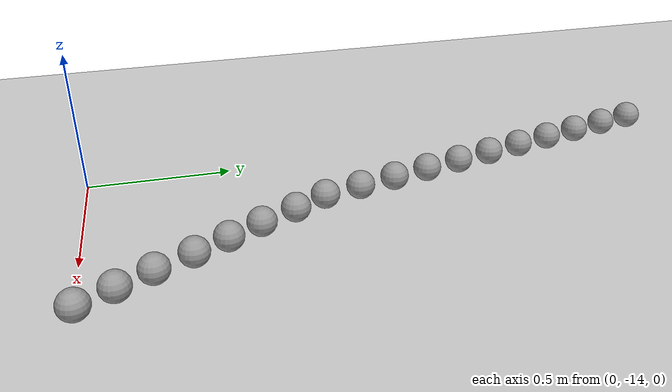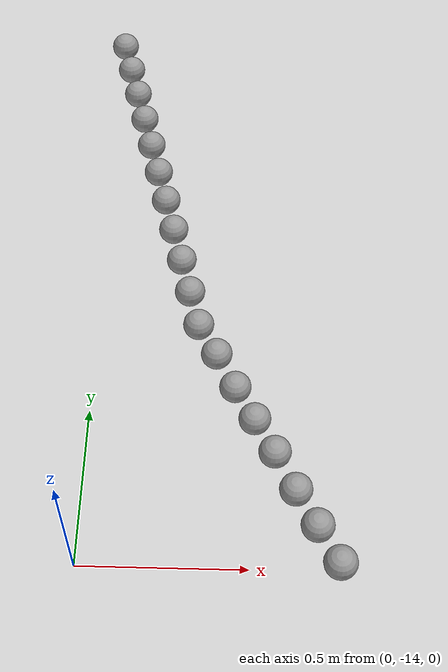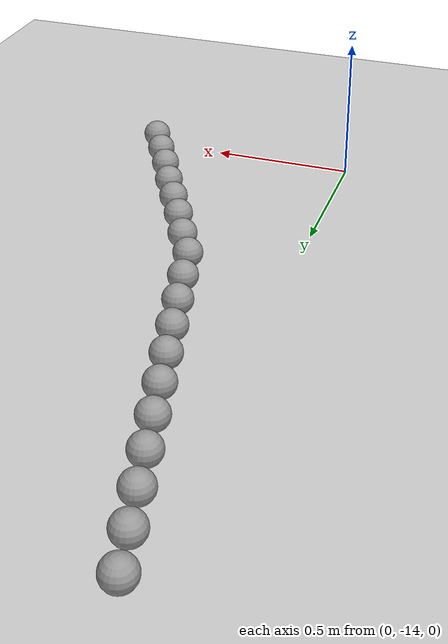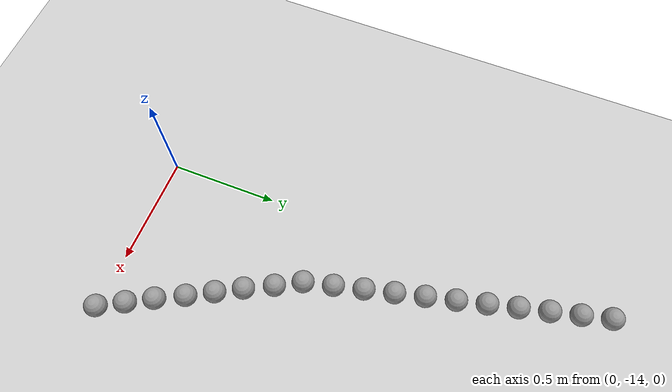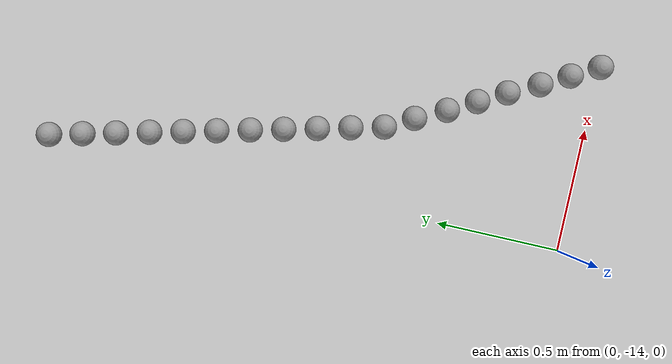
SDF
<sdf version="1.6">
 <world name="default">
  <model name="ground_plane">
   <static>1</static>
   <link name="link">
    <collision name="collision">
     <geometry><plane><normal>0 0 1</normal><size>100 100</size></plane></geometry>
     <surface><friction><ode><mu>100</mu><mu2>50</mu2></ode></friction></surface>
    </collision>
    <visual name="visual">
     <cast_shadows>0</cast_shadows>
     <geometry><plane><normal>0 0 1</normal><size>100 100</size></plane></geometry>
     <material>
      <script><uri>file://media/materials/scripts/gazebo.material</uri><name>Gazebo/Grey</name></script>
     </material>
    </visual>
   </link>
  </model>
  <model name="unit_sphere_0_593">
   <pose>0.757000 -13.990000 0.050000 0 -0 0</pose>
   <link name="link">
    <inertial>
     <mass>1</mass>
     <inertia><ixx>0.1</ixx><ixy>0</ixy><ixz>0</ixz><iyy>0.1</iyy><iyz>0</iyz><izz>0.1</izz></inertia>
    </inertial>
    <collision name="collision"><geometry><sphere><radius>0.050000</radius></sphere></geometry></collision>
    <visual name="visual">
     <geometry><sphere><radius>0.050000</radius></sphere></geometry>
     <material>
      <script><name>Gazebo/Grey</name><uri>file://media/materials/scripts/gazebo.material</uri></script>
     </material>
    </visual>
   </link>
  </model>
  <model name="unit_sphere_0_594">
   <pose>0.696000 -13.880000 0.050000 0 -0 0</pose>
   <link name="link">
    <inertial>
     <mass>1</mass>
     <inertia><ixx>0.1</ixx><ixy>0</ixy><ixz>0</ixz><iyy>0.1</iyy><iyz>0</iyz><izz>0.1</izz></inertia>
    </inertial>
    <collision name="collision"><geometry><sphere><radius>0.050000</radius></sphere></geometry></collision>
    <visual name="visual">
     <geometry><sphere><radius>0.050000</radius></sphere></geometry>
     <material>
      <script><name>Gazebo/Grey</name><uri>file://media/materials/scripts/gazebo.material</uri></script>
     </material>
    </visual>
   </link>
  </model>
  <model name="unit_sphere_0_595">
   <pose>0.635000 -13.770000 0.050000 0 -0 0</pose>
   <link name="link">
    <inertial>
     <mass>1</mass>
     <inertia><ixx>0.1</ixx><ixy>0</ixy><ixz>0</ixz><iyy>0.1</iyy><iyz>0</iyz><izz>0.1</izz></inertia>
    </inertial>
    <collision name="collision"><geometry><sphere><radius>0.050000</radius></sphere></geometry></collision>
    <visual name="visual">
     <geometry><sphere><radius>0.050000</radius></sphere></geometry>
     <material>
      <script><name>Gazebo/Grey</name><uri>file://media/materials/scripts/gazebo.material</uri></script>
     </material>
    </visual>
   </link>
  </model>
  <model name="unit_sphere_0_596">
   <pose>0.574000 -13.650000 0.050000 0 -0 0</pose>
   <link name="link">
    <inertial>
     <mass>1</mass>
     <inertia><ixx>0.1</ixx><ixy>0</ixy><ixz>0</ixz><iyy>0.1</iyy><iyz>0</iyz><izz>0.1</izz></inertia>
    </inertial>
    <collision name="collision"><geometry><sphere><radius>0.050000</radius></sphere></geometry></collision>
    <visual name="visual">
     <geometry><sphere><radius>0.050000</radius></sphere></geometry>
     <material>
      <script><name>Gazebo/Grey</name><uri>file://media/materials/scripts/gazebo.material</uri></script>
     </material>
    </visual>
   </link>
  </model>
  <model name="unit_sphere_0_597">
   <pose>0.513000 -13.540000 0.050000 0 -0 0</pose>
   <link name="link">
    <inertial>
     <mass>1</mass>
     <inertia><ixx>0.1</ixx><ixy>0</ixy><ixz>0</ixz><iyy>0.1</iyy><iyz>0</iyz><izz>0.1</izz></inertia>
    </inertial>
    <collision name="collision"><geometry><sphere><radius>0.050000</radius></sphere></geometry></collision>
    <visual name="visual">
     <geometry><sphere><radius>0.050000</radius></sphere></geometry>
     <material>
      <script><name>Gazebo/Grey</name><uri>file://media/materials/scripts/gazebo.material</uri></script>
     </material>
    </visual>
   </link>
  </model>
  <model name="unit_sphere_0_598">
   <pose>0.452000 -13.430000 0.050000 0 -0 0</pose>
   <link name="link">
    <inertial>
     <mass>1</mass>
     <inertia><ixx>0.1</ixx><ixy>0</ixy><ixz>0</ixz><iyy>0.1</iyy><iyz>0</iyz><izz>0.1</izz></inertia>
    </inertial>
    <collision name="collision"><geometry><sphere><radius>0.050000</radius></sphere></geometry></collision>
    <visual name="visual">
     <geometry><sphere><radius>0.050000</radius></sphere></geometry>
     <material>
      <script><name>Gazebo/Grey</name><uri>file://media/materials/scripts/gazebo.material</uri></script>
     </material>
    </visual>
   </link>
  </model>
  <model name="unit_sphere_0_599">
   <pose>0.391000 -13.310000 0.050000 0 -0 0</pose>
   <link name="link">
    <inertial>
     <mass>1</mass>
     <inertia><ixx>0.1</ixx><ixy>0</ixy><ixz>0</ixz><iyy>0.1</iyy><iyz>0</iyz><izz>0.1</izz></inertia>
    </inertial>
    <collision name="collision"><geometry><sphere><radius>0.050000</radius></sphere></geometry></collision>
    <visual name="visual">
     <geometry><sphere><radius>0.050000</radius></sphere></geometry>
     <material>
      <script><name>Gazebo/Grey</name><uri>file://media/materials/scripts/gazebo.material</uri></script>
     </material>
    </visual>
   </link>
  </model>
  <model name="unit_sphere_0_600">
   <pose>0.330000 -13.200000 0.050000 0 -0 0</pose>
   <link name="link">
    <inertial>
     <mass>1</mass>
     <inertia><ixx>0.1</ixx><ixy>0</ixy><ixz>0</ixz><iyy>0.1</iyy><iyz>0</iyz><izz>0.1</izz></inertia>
    </inertial>
    <collision name="collision"><geometry><sphere><radius>0.050000</radius></sphere></geometry></collision>
    <visual name="visual">
     <geometry><sphere><radius>0.050000</radius></sphere></geometry>
     <material>
      <script><name>Gazebo/Grey</name><uri>file://media/materials/scripts/gazebo.material</uri></script>
     </material>
    </visual>
   </link>
  </model>
  <model name="unit_sphere_0_601">
   <pose>0.297000 -13.070000 0.050000 0 -0 0</pose>
   <link name="link">
    <inertial>
     <mass>1</mass>
     <inertia><ixx>0.1</ixx><ixy>0</ixy><ixz>0</ixz><iyy>0.1</iyy><iyz>0</iyz><izz>0.1</izz></inertia>
    </inertial>
    <collision name="collision"><geometry><sphere><radius>0.050000</radius></sphere></geometry></collision>
    <visual name="visual">
     <geometry><sphere><radius>0.050000</radius></sphere></geometry>
     <material>
      <script><name>Gazebo/Grey</name><uri>file://media/materials/scripts/gazebo.material</uri></script>
     </material>
    </visual>
   </link>
  </model>
  <model name="unit_sphere_0_602">
   <pose>0.264000 -12.940000 0.050000 0 -0 0</pose>
   <link name="link">
    <inertial>
     <mass>1</mass>
     <inertia><ixx>0.1</ixx><ixy>0</ixy><ixz>0</ixz><iyy>0.1</iyy><iyz>0</iyz><izz>0.1</izz></inertia>
    </inertial>
    <collision name="collision"><geometry><sphere><radius>0.050000</radius></sphere></geometry></collision>
    <visual name="visual">
     <geometry><sphere><radius>0.050000</radius></sphere></geometry>
     <material>
      <script><name>Gazebo/Grey</name><uri>file://media/materials/scripts/gazebo.material</uri></script>
     </material>
    </visual>
   </link>
  </model>
  <model name="unit_sphere_0_603">
   <pose>0.231000 -12.810000 0.050000 0 -0 0</pose>
   <link name="link">
    <inertial>
     <mass>1</mass>
     <inertia><ixx>0.1</ixx><ixy>0</ixy><ixz>0</ixz><iyy>0.1</iyy><iyz>0</iyz><izz>0.1</izz></inertia>
    </inertial>
    <collision name="collision"><geometry><sphere><radius>0.050000</radius></sphere></geometry></collision>
    <visual name="visual">
     <geometry><sphere><radius>0.050000</radius></sphere></geometry>
     <material>
      <script><name>Gazebo/Grey</name><uri>file://media/materials/scripts/gazebo.material</uri></script>
     </material>
    </visual>
   </link>
  </model>
  <model name="unit_sphere_0_604">
   <pose>0.198000 -12.680000 0.050000 0 -0 0</pose>
   <link name="link">
    <inertial>
     <mass>1</mass>
     <inertia><ixx>0.1</ixx><ixy>0</ixy><ixz>0</ixz><iyy>0.1</iyy><iyz>0</iyz><izz>0.1</izz></inertia>
    </inertial>
    <collision name="collision"><geometry><sphere><radius>0.050000</radius></sphere></geometry></collision>
    <visual name="visual">
     <geometry><sphere><radius>0.050000</radius></sphere></geometry>
     <material>
      <script><name>Gazebo/Grey</name><uri>file://media/materials/scripts/gazebo.material</uri></script>
     </material>
    </visual>
   </link>
  </model>
  <model name="unit_sphere_0_605">
   <pose>0.165000 -12.550000 0.050000 0 -0 0</pose>
   <link name="link">
    <inertial>
     <mass>1</mass>
     <inertia><ixx>0.1</ixx><ixy>0</ixy><ixz>0</ixz><iyy>0.1</iyy><iyz>0</iyz><izz>0.1</izz></inertia>
    </inertial>
    <collision name="collision"><geometry><sphere><radius>0.050000</radius></sphere></geometry></collision>
    <visual name="visual">
     <geometry><sphere><radius>0.050000</radius></sphere></geometry>
     <material>
      <script><name>Gazebo/Grey</name><uri>file://media/materials/scripts/gazebo.material</uri></script>
     </material>
    </visual>
   </link>
  </model>
  <model name="unit_sphere_0_606">
   <pose>0.132000 -12.420000 0.050000 0 -0 0</pose>
   <link name="link">
    <inertial>
     <mass>1</mass>
     <inertia><ixx>0.1</ixx><ixy>0</ixy><ixz>0</ixz><iyy>0.1</iyy><iyz>0</iyz><izz>0.1</izz></inertia>
    </inertial>
    <collision name="collision"><geometry><sphere><radius>0.050000</radius></sphere></geometry></collision>
    <visual name="visual">
     <geometry><sphere><radius>0.050000</radius></sphere></geometry>
     <material>
      <script><name>Gazebo/Grey</name><uri>file://media/materials/scripts/gazebo.material</uri></script>
     </material>
    </visual>
   </link>
  </model>
  <model name="unit_sphere_0_607">
   <pose>0.099000 -12.290000 0.050000 0 -0 0</pose>
   <link name="link">
    <inertial>
     <mass>1</mass>
     <inertia><ixx>0.1</ixx><ixy>0</ixy><ixz>0</ixz><iyy>0.1</iyy><iyz>0</iyz><izz>0.1</izz></inertia>
    </inertial>
    <collision name="collision"><geometry><sphere><radius>0.050000</radius></sphere></geometry></collision>
    <visual name="visual">
     <geometry><sphere><radius>0.050000</radius></sphere></geometry>
     <material>
      <script><name>Gazebo/Grey</name><uri>file://media/materials/scripts/gazebo.material</uri></script>
     </material>
    </visual>
   </link>
  </model>
  <model name="unit_sphere_0_608">
   <pose>0.066000 -12.160000 0.050000 0 -0 0</pose>
   <link name="link">
    <inertial>
     <mass>1</mass>
     <inertia><ixx>0.1</ixx><ixy>0</ixy><ixz>0</ixz><iyy>0.1</iyy><iyz>0</iyz><izz>0.1</izz></inertia>
    </inertial>
    <collision name="collision"><geometry><sphere><radius>0.050000</radius></sphere></geometry></collision>
    <visual name="visual">
     <geometry><sphere><radius>0.050000</radius></sphere></geometry>
     <material>
      <script><name>Gazebo/Grey</name><uri>file://media/materials/scripts/gazebo.material</uri></script>
     </material>
    </visual>
   </link>
  </model>
  <model name="unit_sphere_0_609">
   <pose>0.033000 -12.030000 0.050000 0 -0 0</pose>
   <link name="link">
    <inertial>
     <mass>1</mass>
     <inertia><ixx>0.1</ixx><ixy>0</ixy><ixz>0</ixz><iyy>0.1</iyy><iyz>0</iyz><izz>0.1</izz></inertia>
    </inertial>
    <collision name="collision"><geometry><sphere><radius>0.050000</radius></sphere></geometry></collision>
    <visual name="visual">
     <geometry><sphere><radius>0.050000</radius></sphere></geometry>
     <material>
      <script><name>Gazebo/Grey</name><uri>file://media/materials/scripts/gazebo.material</uri></script>
     </material>
    </visual>
   </link>
  </model>
  <model name="unit_sphere_0_610">
   <pose>0.000000 -11.900000 0.050000 0 -0 0</pose>
   <link name="link">
    <inertial>
     <mass>1</mass>
     <inertia><ixx>0.1</ixx><ixy>0</ixy><ixz>0</ixz><iyy>0.1</iyy><iyz>0</iyz><izz>0.1</izz></inertia>
    </inertial>
    <collision name="collision"><geometry><sphere><radius>0.050000</radius></sphere></geometry></collision>
    <visual name="visual">
     <geometry><sphere><radius>0.050000</radius></sphere></geometry>
     <material>
      <script><name>Gazebo/Grey</name><uri>file://media/materials/scripts/gazebo.material</uri></script>
     </material>
    </visual>
   </link>
  </model>
 </world>
</sdf>
